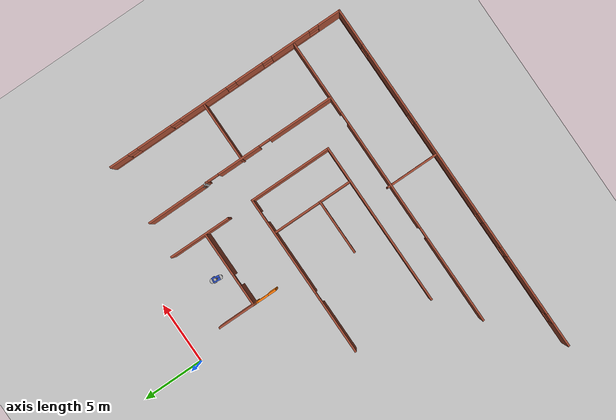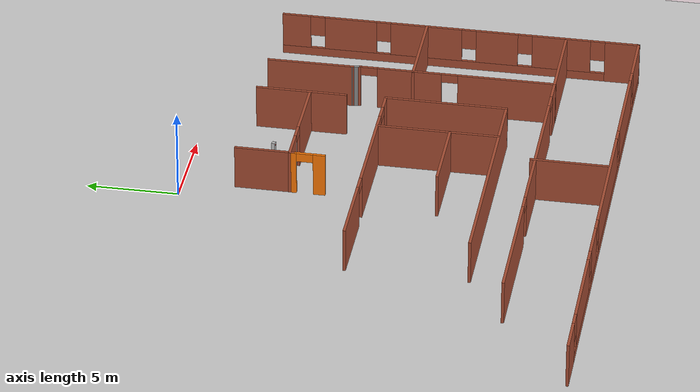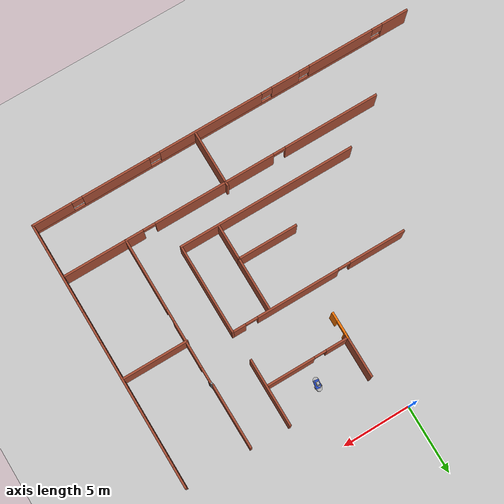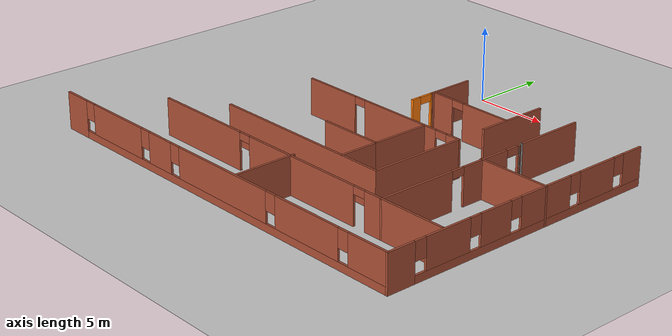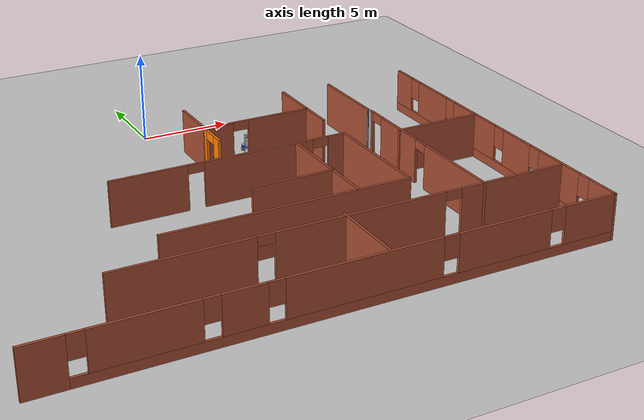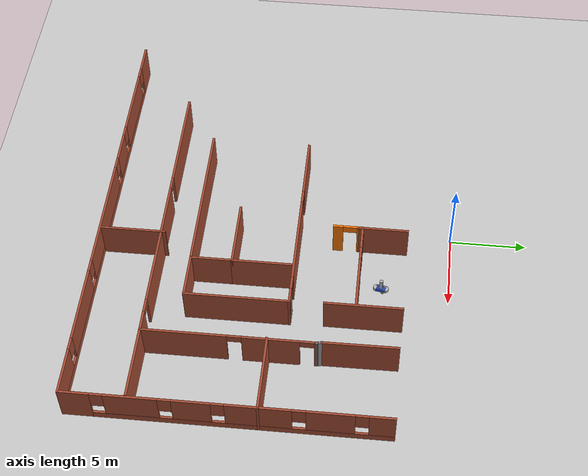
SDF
<sdf version="1.7">
 <world name="default">
  <model name="ground_plane">
   <static>1</static>
   <link name="link">
    <collision name="collision">
     <geometry><plane><normal>0 0 1</normal><size>100 100</size></plane></geometry>
     <surface>
      <contact><collide_bitmask>65535</collide_bitmask></contact>
      <friction><ode><mu>100</mu><mu2>50</mu2></ode></friction>
     </surface>
    </collision>
    <visual name="visual">
     <cast_shadows>0</cast_shadows>
     <geometry><plane><normal>0 0 1</normal><size>100 100</size></plane></geometry>
     <material>
      <script><uri>file://media/materials/scripts/gazebo.material</uri><name>Gazebo/Grey</name></script>
     </material>
    </visual>
   </link>
  </model>
  <model name="dh-hdh">
   <pose>0.666955 -11.441 0 0 -0 0</pose>
   <link name="Wall_27">
    <pose>0.025415 -11.366 0 0 -0 0</pose>
    <visual name="Wall_27_Visual_0">
     <pose>-13.6119 0 1.25 0 -0 0</pose>
     <geometry><box><size>2.02613 0.15 2.5</size></box></geometry>
     <material>
      <script><uri>file://media/materials/scripts/gazebo.material</uri><name>Gazebo/Bricks</name></script>
      <ambient>0.466667 0.462745 0.482353 1</ambient>
     </material>
     <meta><layer>0</layer></meta>
    </visual>
    <collision name="Wall_27_Collision_0">
     <geometry><box><size>2.02613 0.15 2.5</size></box></geometry>
     <pose>-13.6119 0 1.25 0 -0 0</pose>
    </collision>
    <visual name="Wall_27_Visual_1">
     <pose>1.01306 0 0.25 0 -0 0</pose>
     <geometry><box><size>27.2239 0.15 0.5</size></box></geometry>
     <material>
      <script><uri>file://media/materials/scripts/gazebo.material</uri><name>Gazebo/Bricks</name></script>
      <ambient>0.466667 0.462745 0.482353 1</ambient>
     </material>
     <meta><layer>0</layer></meta>
    </visual>
    <collision name="Wall_27_Collision_1">
     <geometry><box><size>27.2239 0.15 0.5</size></box></geometry>
     <pose>1.01306 0 0.25 0 -0 0</pose>
    </collision>
    <visual name="Wall_27_Visual_2">
     <pose>-9.30313 0 1.5 0 -0 0</pose>
     <geometry><box><size>4.99147 0.15 2</size></box></geometry>
     <material>
      <script><uri>file://media/materials/scripts/gazebo.material</uri><name>Gazebo/Bricks</name></script>
      <ambient>0.466667 0.462745 0.482353 1</ambient>
     </material>
     <meta><layer>0</layer></meta>
    </visual>
    <collision name="Wall_27_Collision_2">
     <geometry><box><size>4.99147 0.15 2</size></box></geometry>
     <pose>-9.30313 0 1.5 0 -0 0</pose>
    </collision>
    <visual name="Wall_27_Visual_3">
     <pose>-4.93579 0 1.5 0 -0 0</pose>
     <geometry><box><size>2.14321 0.15 2</size></box></geometry>
     <material>
      <script><uri>file://media/materials/scripts/gazebo.material</uri><name>Gazebo/Bricks</name></script>
      <ambient>0.466667 0.462745 0.482353 1</ambient>
     </material>
     <meta><layer>0</layer></meta>
    </visual>
    <collision name="Wall_27_Collision_3">
     <geometry><box><size>2.14321 0.15 2</size></box></geometry>
     <pose>-4.93579 0 1.5 0 -0 0</pose>
    </collision>
    <visual name="Wall_27_Visual_4">
     <pose>0.896215 0 1.5 0 -0 0</pose>
     <geometry><box><size>7.92081 0.15 2</size></box></geometry>
     <material>
      <script><uri>file://media/materials/scripts/gazebo.material</uri><name>Gazebo/Bricks</name></script>
      <ambient>0.466667 0.462745 0.482353 1</ambient>
     </material>
     <meta><layer>0</layer></meta>
    </visual>
    <collision name="Wall_27_Collision_4">
     <geometry><box><size>7.92081 0.15 2</size></box></geometry>
     <pose>0.896215 0 1.5 0 -0 0</pose>
    </collision>
    <visual name="Wall_27_Visual_5">
     <pose>8.22872 0 1.5 0 -0 0</pose>
     <geometry><box><size>5.14421 0.15 2</size></box></geometry>
     <material>
      <script><uri>file://media/materials/scripts/gazebo.material</uri><name>Gazebo/Bricks</name></script>
      <ambient>0.466667 0.462745 0.482353 1</ambient>
     </material>
     <meta><layer>0</layer></meta>
    </visual>
    <collision name="Wall_27_Collision_5">
     <geometry><box><size>5.14421 0.15 2</size></box></geometry>
     <pose>8.22872 0 1.5 0 -0 0</pose>
    </collision>
    <visual name="Wall_27_Visual_6">
     <pose>13.1129 0 1.5 0 -0 0</pose>
     <geometry><box><size>3.02417 0.15 2</size></box></geometry>
     <material>
      <script><uri>file://media/materials/scripts/gazebo.material</uri><name>Gazebo/Bricks</name></script>
      <ambient>0.466667 0.462745 0.482353 1</ambient>
     </material>
     <meta><layer>0</layer></meta>
    </visual>
    <collision name="Wall_27_Collision_6">
     <geometry><box><size>3.02417 0.15 2</size></box></geometry>
     <pose>13.1129 0 1.5 0 -0 0</pose>
    </collision>
    <visual name="Wall_27_Visual_7">
     <pose>-12.1989 0 1.9 0 -0 0</pose>
     <geometry><box><size>0.8 0.15 1.2</size></box></geometry>
     <material>
      <script><uri>file://media/materials/scripts/gazebo.material</uri><name>Gazebo/Bricks</name></script>
      <ambient>0.466667 0.462745 0.482353 1</ambient>
     </material>
     <meta><layer>0</layer></meta>
    </visual>
    <collision name="Wall_27_Collision_7">
     <geometry><box><size>0.8 0.15 1.2</size></box></geometry>
     <pose>-12.1989 0 1.9 0 -0 0</pose>
    </collision>
    <visual name="Wall_27_Visual_8">
     <pose>-6.4074 0 1.9 0 -0 0</pose>
     <geometry><box><size>0.8 0.15 1.2</size></box></geometry>
     <material>
      <script><uri>file://media/materials/scripts/gazebo.material</uri><name>Gazebo/Bricks</name></script>
      <ambient>0.466667 0.462745 0.482353 1</ambient>
     </material>
     <meta><layer>0</layer></meta>
    </visual>
    <collision name="Wall_27_Collision_8">
     <geometry><box><size>0.8 0.15 1.2</size></box></geometry>
     <pose>-6.4074 0 1.9 0 -0 0</pose>
    </collision>
    <visual name="Wall_27_Visual_9">
     <pose>-3.46419 0 1.9 0 -0 0</pose>
     <geometry><box><size>0.8 0.15 1.2</size></box></geometry>
     <material>
      <script><uri>file://media/materials/scripts/gazebo.material</uri><name>Gazebo/Bricks</name></script>
      <ambient>0.466667 0.462745 0.482353 1</ambient>
     </material>
     <meta><layer>0</layer></meta>
    </visual>
    <collision name="Wall_27_Collision_9">
     <geometry><box><size>0.8 0.15 1.2</size></box></geometry>
     <pose>-3.46419 0 1.9 0 -0 0</pose>
    </collision>
    <visual name="Wall_27_Visual_10">
     <pose>5.25662 0 1.9 0 -0 0</pose>
     <geometry><box><size>0.8 0.15 1.2</size></box></geometry>
     <material>
      <script><uri>file://media/materials/scripts/gazebo.material</uri><name>Gazebo/Bricks</name></script>
      <ambient>0.466667 0.462745 0.482353 1</ambient>
     </material>
     <meta><layer>0</layer></meta>
    </visual>
    <collision name="Wall_27_Collision_10">
     <geometry><box><size>0.8 0.15 1.2</size></box></geometry>
     <pose>5.25662 0 1.9 0 -0 0</pose>
    </collision>
    <visual name="Wall_27_Visual_11">
     <pose>11.2008 0 1.9 0 -0 0</pose>
     <geometry><box><size>0.8 0.15 1.2</size></box></geometry>
     <material>
      <script><uri>file://media/materials/scripts/gazebo.material</uri><name>Gazebo/Bricks</name></script>
      <ambient>0.466667 0.462745 0.482353 1</ambient>
     </material>
     <meta><layer>0</layer></meta>
    </visual>
    <collision name="Wall_27_Collision_11">
     <geometry><box><size>0.8 0.15 1.2</size></box></geometry>
     <pose>11.2008 0 1.9 0 -0 0</pose>
    </collision>
   </link>
   <link name="Wall_28">
    <pose>14.5754 -1.44103 0 0 -0 1.5708</pose>
    <visual name="Wall_28_Visual_0">
     <pose>-9.03458 0 1.25 0 -0 0</pose>
     <geometry><box><size>1.93084 0.15 2.5</size></box></geometry>
     <material>
      <script><uri>file://media/materials/scripts/gazebo.material</uri><name>Gazebo/Bricks</name></script>
      <ambient>0.466667 0.462745 0.482353 1</ambient>
     </material>
     <meta><layer>0</layer></meta>
    </visual>
    <collision name="Wall_28_Collision_0">
     <geometry><box><size>1.93084 0.15 2.5</size></box></geometry>
     <pose>-9.03458 0 1.25 0 -0 0</pose>
    </collision>
    <visual name="Wall_28_Visual_1">
     <pose>0.965422 0 0.25 0 -0 0</pose>
     <geometry><box><size>18.0692 0.15 0.5</size></box></geometry>
     <material>
      <script><uri>file://media/materials/scripts/gazebo.material</uri><name>Gazebo/Bricks</name></script>
      <ambient>0.466667 0.462745 0.482353 1</ambient>
     </material>
     <meta><layer>0</layer></meta>
    </visual>
    <collision name="Wall_28_Collision_1">
     <geometry><box><size>18.0692 0.15 0.5</size></box></geometry>
     <pose>0.965422 0 0.25 0 -0 0</pose>
    </collision>
    <visual name="Wall_28_Visual_2">
     <pose>-5.64647 0 1.5 0 -0 0</pose>
     <geometry><box><size>3.24536 0.15 2</size></box></geometry>
     <material>
      <script><uri>file://media/materials/scripts/gazebo.material</uri><name>Gazebo/Bricks</name></script>
      <ambient>0.466667 0.462745 0.482353 1</ambient>
     </material>
     <meta><layer>0</layer></meta>
    </visual>
    <collision name="Wall_28_Collision_2">
     <geometry><box><size>3.24536 0.15 2</size></box></geometry>
     <pose>-5.64647 0 1.5 0 -0 0</pose>
    </collision>
    <visual name="Wall_28_Visual_3">
     <pose>-2.05518 0 1.5 0 -0 0</pose>
     <geometry><box><size>2.33722 0.15 2</size></box></geometry>
     <material>
      <script><uri>file://media/materials/scripts/gazebo.material</uri><name>Gazebo/Bricks</name></script>
      <ambient>0.466667 0.462745 0.482353 1</ambient>
     </material>
     <meta><layer>0</layer></meta>
    </visual>
    <collision name="Wall_28_Collision_3">
     <geometry><box><size>2.33722 0.15 2</size></box></geometry>
     <pose>-2.05518 0 1.5 0 -0 0</pose>
    </collision>
    <visual name="Wall_28_Visual_4">
     <pose>1.90762 0 1.5 0 -0 0</pose>
     <geometry><box><size>3.98839 0.15 2</size></box></geometry>
     <material>
      <script><uri>file://media/materials/scripts/gazebo.material</uri><name>Gazebo/Bricks</name></script>
      <ambient>0.466667 0.462745 0.482353 1</ambient>
     </material>
     <meta><layer>0</layer></meta>
    </visual>
    <collision name="Wall_28_Collision_4">
     <geometry><box><size>3.98839 0.15 2</size></box></geometry>
     <pose>1.90762 0 1.5 0 -0 0</pose>
    </collision>
    <visual name="Wall_28_Visual_5">
     <pose>6.15938 0 1.5 0 -0 0</pose>
     <geometry><box><size>2.91513 0.15 2</size></box></geometry>
     <material>
      <script><uri>file://media/materials/scripts/gazebo.material</uri><name>Gazebo/Bricks</name></script>
      <ambient>0.466667 0.462745 0.482353 1</ambient>
     </material>
     <meta><layer>0</layer></meta>
    </visual>
    <collision name="Wall_28_Collision_5">
     <geometry><box><size>2.91513 0.15 2</size></box></geometry>
     <pose>6.15938 0 1.5 0 -0 0</pose>
    </collision>
    <visual name="Wall_28_Visual_6">
     <pose>9.20847 0 1.5 0 -0 0</pose>
     <geometry><box><size>1.58306 0.15 2</size></box></geometry>
     <material>
      <script><uri>file://media/materials/scripts/gazebo.material</uri><name>Gazebo/Bricks</name></script>
      <ambient>0.466667 0.462745 0.482353 1</ambient>
     </material>
     <meta><layer>0</layer></meta>
    </visual>
    <collision name="Wall_28_Collision_6">
     <geometry><box><size>1.58306 0.15 2</size></box></geometry>
     <pose>9.20847 0 1.5 0 -0 0</pose>
    </collision>
    <visual name="Wall_28_Visual_7">
     <pose>-7.66916 0 1.9 0 -0 0</pose>
     <geometry><box><size>0.8 0.15 1.2</size></box></geometry>
     <material>
      <script><uri>file://media/materials/scripts/gazebo.material</uri><name>Gazebo/Bricks</name></script>
      <ambient>0.466667 0.462745 0.482353 1</ambient>
     </material>
     <meta><layer>0</layer></meta>
    </visual>
    <collision name="Wall_28_Collision_7">
     <geometry><box><size>0.8 0.15 1.2</size></box></geometry>
     <pose>-7.66916 0 1.9 0 -0 0</pose>
    </collision>
    <visual name="Wall_28_Visual_8">
     <pose>-3.62379 0 1.9 0 -0 0</pose>
     <geometry><box><size>0.8 0.15 1.2</size></box></geometry>
     <material>
      <script><uri>file://media/materials/scripts/gazebo.material</uri><name>Gazebo/Bricks</name></script>
      <ambient>0.466667 0.462745 0.482353 1</ambient>
     </material>
     <meta><layer>0</layer></meta>
    </visual>
    <collision name="Wall_28_Collision_8">
     <geometry><box><size>0.8 0.15 1.2</size></box></geometry>
     <pose>-3.62379 0 1.9 0 -0 0</pose>
    </collision>
    <visual name="Wall_28_Visual_9">
     <pose>-0.486573 0 1.9 0 -0 0</pose>
     <geometry><box><size>0.8 0.15 1.2</size></box></geometry>
     <material>
      <script><uri>file://media/materials/scripts/gazebo.material</uri><name>Gazebo/Bricks</name></script>
      <ambient>0.466667 0.462745 0.482353 1</ambient>
     </material>
     <meta><layer>0</layer></meta>
    </visual>
    <collision name="Wall_28_Collision_9">
     <geometry><box><size>0.8 0.15 1.2</size></box></geometry>
     <pose>-0.486573 0 1.9 0 -0 0</pose>
    </collision>
    <visual name="Wall_28_Visual_10">
     <pose>4.30182 0 1.9 0 -0 0</pose>
     <geometry><box><size>0.8 0.15 1.2</size></box></geometry>
     <material>
      <script><uri>file://media/materials/scripts/gazebo.material</uri><name>Gazebo/Bricks</name></script>
      <ambient>0.466667 0.462745 0.482353 1</ambient>
     </material>
     <meta><layer>0</layer></meta>
    </visual>
    <collision name="Wall_28_Collision_10">
     <geometry><box><size>0.8 0.15 1.2</size></box></geometry>
     <pose>4.30182 0 1.9 0 -0 0</pose>
    </collision>
    <visual name="Wall_28_Visual_11">
     <pose>8.01694 0 1.9 0 -0 0</pose>
     <geometry><box><size>0.8 0.15 1.2</size></box></geometry>
     <material>
      <script><uri>file://media/materials/scripts/gazebo.material</uri><name>Gazebo/Bricks</name></script>
      <ambient>0.466667 0.462745 0.482353 1</ambient>
     </material>
     <meta><layer>0</layer></meta>
    </visual>
    <collision name="Wall_28_Collision_11">
     <geometry><box><size>0.8 0.15 1.2</size></box></geometry>
     <pose>8.01694 0 1.9 0 -0 0</pose>
    </collision>
   </link>
   <link name="Wall_32">
    <pose>0.116267 -7.34918 0 0 -0 0</pose>
    <visual name="Wall_32_Visual_0">
     <pose>-6.16143 0 1.25 0 -0 0</pose>
     <geometry><box><size>7.17714 0.15 2.5</size></box></geometry>
     <material>
      <script><uri>file://media/materials/scripts/gazebo.material</uri><name>Gazebo/Bricks</name></script>
      <ambient>0.996078 0.47451 0.0196078 1</ambient>
     </material>
     <meta><layer>0</layer></meta>
    </visual>
    <collision name="Wall_32_Collision_0">
     <geometry><box><size>7.17714 0.15 2.5</size></box></geometry>
     <pose>-6.16143 0 1.25 0 -0 0</pose>
    </collision>
    <visual name="Wall_32_Visual_1">
     <pose>2.89166 0 1.25 0 -0 0</pose>
     <geometry><box><size>9.12904 0.15 2.5</size></box></geometry>
     <material>
      <script><uri>file://media/materials/scripts/gazebo.material</uri><name>Gazebo/Bricks</name></script>
      <ambient>0.996078 0.47451 0.0196078 1</ambient>
     </material>
     <meta><layer>0</layer></meta>
    </visual>
    <collision name="Wall_32_Collision_1">
     <geometry><box><size>9.12904 0.15 2.5</size></box></geometry>
     <pose>2.89166 0 1.25 0 -0 0</pose>
    </collision>
    <visual name="Wall_32_Visual_2">
     <pose>9.05309 0 1.25 0 -0 0</pose>
     <geometry><box><size>1.39382 0.15 2.5</size></box></geometry>
     <material>
      <script><uri>file://media/materials/scripts/gazebo.material</uri><name>Gazebo/Bricks</name></script>
      <ambient>0.996078 0.47451 0.0196078 1</ambient>
     </material>
     <meta><layer>0</layer></meta>
    </visual>
    <collision name="Wall_32_Collision_2">
     <geometry><box><size>1.39382 0.15 2.5</size></box></geometry>
     <pose>9.05309 0 1.25 0 -0 0</pose>
    </collision>
    <visual name="Wall_32_Visual_3">
     <pose>-2.12286 0 2.25 0 -0 0</pose>
     <geometry><box><size>0.9 0.15 0.5</size></box></geometry>
     <material>
      <script><uri>file://media/materials/scripts/gazebo.material</uri><name>Gazebo/Bricks</name></script>
      <ambient>0.996078 0.47451 0.0196078 1</ambient>
     </material>
     <meta><layer>0</layer></meta>
    </visual>
    <collision name="Wall_32_Collision_3">
     <geometry><box><size>0.9 0.15 0.5</size></box></geometry>
     <pose>-2.12286 0 2.25 0 -0 0</pose>
    </collision>
    <visual name="Wall_32_Visual_4">
     <pose>7.90618 0 2.25 0 -0 0</pose>
     <geometry><box><size>0.9 0.15 0.5</size></box></geometry>
     <material>
      <script><uri>file://media/materials/scripts/gazebo.material</uri><name>Gazebo/Bricks</name></script>
      <ambient>0.996078 0.47451 0.0196078 1</ambient>
     </material>
     <meta><layer>0</layer></meta>
    </visual>
    <collision name="Wall_32_Collision_4">
     <geometry><box><size>0.9 0.15 0.5</size></box></geometry>
     <pose>7.90618 0 2.25 0 -0 0</pose>
    </collision>
   </link>
   <link name="Wall_33">
    <pose>9.79127 -1.92418 0 0 -0 1.5708</pose>
    <visual name="Wall_33_Visual_0">
     <pose>-2.80029 0 1.25 0 -0 0</pose>
     <geometry><box><size>5.39943 0.15 2.5</size></box></geometry>
     <material>
      <script><uri>file://media/materials/scripts/gazebo.material</uri><name>Gazebo/Bricks</name></script>
      <ambient>0.996078 0.47451 0.0196078 1</ambient>
     </material>
     <meta><layer>0</layer></meta>
    </visual>
    <collision name="Wall_33_Collision_0">
     <geometry><box><size>5.39943 0.15 2.5</size></box></geometry>
     <pose>-2.80029 0 1.25 0 -0 0</pose>
    </collision>
    <visual name="Wall_33_Visual_1">
     <pose>2.57855 0 1.25 0 -0 0</pose>
     <geometry><box><size>3.55825 0.15 2.5</size></box></geometry>
     <material>
      <script><uri>file://media/materials/scripts/gazebo.material</uri><name>Gazebo/Bricks</name></script>
      <ambient>0.996078 0.47451 0.0196078 1</ambient>
     </material>
     <meta><layer>0</layer></meta>
    </visual>
    <collision name="Wall_33_Collision_1">
     <geometry><box><size>3.55825 0.15 2.5</size></box></geometry>
     <pose>2.57855 0 1.25 0 -0 0</pose>
    </collision>
    <visual name="Wall_33_Visual_2">
     <pose>5.37884 0 1.25 0 -0 0</pose>
     <geometry><box><size>0.24232 0.15 2.5</size></box></geometry>
     <material>
      <script><uri>file://media/materials/scripts/gazebo.material</uri><name>Gazebo/Bricks</name></script>
      <ambient>0.996078 0.47451 0.0196078 1</ambient>
     </material>
     <meta><layer>0</layer></meta>
    </visual>
    <collision name="Wall_33_Collision_2">
     <geometry><box><size>0.24232 0.15 2.5</size></box></geometry>
     <pose>5.37884 0 1.25 0 -0 0</pose>
    </collision>
    <visual name="Wall_33_Visual_3">
     <pose>0.349428 0 2.25 0 -0 0</pose>
     <geometry><box><size>0.9 0.15 0.5</size></box></geometry>
     <material>
      <script><uri>file://media/materials/scripts/gazebo.material</uri><name>Gazebo/Bricks</name></script>
      <ambient>0.996078 0.47451 0.0196078 1</ambient>
     </material>
     <meta><layer>0</layer></meta>
    </visual>
    <collision name="Wall_33_Collision_3">
     <geometry><box><size>0.9 0.15 0.5</size></box></geometry>
     <pose>0.349428 0 2.25 0 -0 0</pose>
    </collision>
    <visual name="Wall_33_Visual_4">
     <pose>4.80768 0 2.25 0 -0 0</pose>
     <geometry><box><size>0.9 0.15 0.5</size></box></geometry>
     <material>
      <script><uri>file://media/materials/scripts/gazebo.material</uri><name>Gazebo/Bricks</name></script>
      <ambient>0.996078 0.47451 0.0196078 1</ambient>
     </material>
     <meta><layer>0</layer></meta>
    </visual>
    <collision name="Wall_33_Collision_4">
     <geometry><box><size>0.9 0.15 0.5</size></box></geometry>
     <pose>4.80768 0 2.25 0 -0 0</pose>
    </collision>
   </link>
   <link name="Wall_34">
    <collision name="Wall_34_Collision">
     <geometry><box><size>0.437183 0.15 2.5</size></box></geometry>
     <pose>0 0 1.25 0 -0 0</pose>
    </collision>
    <visual name="Wall_34_Visual">
     <pose>0 0 1.25 0 -0 0</pose>
     <geometry><box><size>0.437183 0.15 2.5</size></box></geometry>
     <material>
      <script><uri>file://media/materials/scripts/gazebo.material</uri><name>Gazebo/Grey</name></script>
      <ambient>1 1 1 1</ambient>
     </material>
     <meta><layer>0</layer></meta>
    </visual>
    <pose>9.76068 3.64111 0 0 -0 1.78548</pose>
   </link>
   <link name="Wall_40">
    <collision name="Wall_40_Collision">
     <geometry><box><size>4.80758 0.15 2.5</size></box></geometry>
     <pose>0 0 1.25 0 -0 0</pose>
    </collision>
    <visual name="Wall_40_Visual">
     <pose>0 0 1.25 0 -0 0</pose>
     <geometry><box><size>4.80758 0.15 2.5</size></box></geometry>
     <material>
      <script><uri>file://media/materials/scripts/gazebo.material</uri><name>Gazebo/Bricks</name></script>
      <ambient>0.996078 0.47451 0.0196078 1</ambient>
     </material>
     <meta><layer>0</layer></meta>
    </visual>
    <pose>9.71538 6.11015 0 0 -0 1.57711</pose>
   </link>
   <link name="Wall_42">
    <collision name="Wall_42_Collision">
     <geometry><box><size>5 0.15 2.5</size></box></geometry>
     <pose>0 0 1.25 0 -0 0</pose>
    </collision>
    <visual name="Wall_42_Visual">
     <pose>0 0 1.25 0 -0 0</pose>
     <geometry><box><size>5 0.15 2.5</size></box></geometry>
     <material>
      <script><uri>file://media/materials/scripts/gazebo.material</uri><name>Gazebo/Bricks</name></script>
      <ambient>0.996078 0.47451 0.0196078 1</ambient>
     </material>
     <meta><layer>0</layer></meta>
    </visual>
    <pose>6.79742 6.09993 0 0 -0 -1.5708</pose>
   </link>
   <link name="Wall_46">
    <collision name="Wall_46_Collision">
     <geometry><box><size>13.25 0.15 2.5</size></box></geometry>
     <pose>0 0 1.25 0 -0 0</pose>
    </collision>
    <visual name="Wall_46_Visual">
     <pose>0 0 1.25 0 -0 0</pose>
     <geometry><box><size>13.25 0.15 2.5</size></box></geometry>
     <material>
      <script><uri>file://media/materials/scripts/gazebo.material</uri><name>Gazebo/Bricks</name></script>
      <ambient>0.996078 0.47451 0.0196078 1</ambient>
     </material>
     <meta><layer>0</layer></meta>
    </visual>
    <pose>0.332017 -5.11879 0 0 -0 0</pose>
   </link>
   <link name="Wall_47">
    <collision name="Wall_47_Collision">
     <geometry><box><size>6.75 0.15 2.5</size></box></geometry>
     <pose>0 0 1.25 0 -0 0</pose>
    </collision>
    <visual name="Wall_47_Visual">
     <pose>0 0 1.25 0 -0 0</pose>
     <geometry><box><size>6.75 0.15 2.5</size></box></geometry>
     <material>
      <script><uri>file://media/materials/scripts/gazebo.material</uri><name>Gazebo/Bricks</name></script>
      <ambient>0.996078 0.47451 0.0196078 1</ambient>
     </material>
     <meta><layer>0</layer></meta>
    </visual>
    <pose>6.88202 -1.81879 0 0 -0 1.5708</pose>
   </link>
   <link name="Wall_48">
    <pose>0.332017 1.48121 0 0 -0 3.14159</pose>
    <visual name="Wall_48_Visual_0">
     <pose>-6.09095 0 1.25 0 -0 0</pose>
     <geometry><box><size>1.0681 0.15 2.5</size></box></geometry>
     <material>
      <script><uri>file://media/materials/scripts/gazebo.material</uri><name>Gazebo/Bricks</name></script>
      <ambient>0.996078 0.47451 0.0196078 1</ambient>
     </material>
     <meta><layer>0</layer></meta>
    </visual>
    <collision name="Wall_48_Collision_0">
     <geometry><box><size>1.0681 0.15 2.5</size></box></geometry>
     <pose>-6.09095 0 1.25 0 -0 0</pose>
    </collision>
    <visual name="Wall_48_Visual_1">
     <pose>-1.5667 0 1.25 0 -0 0</pose>
     <geometry><box><size>6.1804 0.15 2.5</size></box></geometry>
     <material>
      <script><uri>file://media/materials/scripts/gazebo.material</uri><name>Gazebo/Bricks</name></script>
      <ambient>0.996078 0.47451 0.0196078 1</ambient>
     </material>
     <meta><layer>0</layer></meta>
    </visual>
    <collision name="Wall_48_Collision_1">
     <geometry><box><size>6.1804 0.15 2.5</size></box></geometry>
     <pose>-1.5667 0 1.25 0 -0 0</pose>
    </collision>
    <visual name="Wall_48_Visual_2">
     <pose>4.52425 0 1.25 0 -0 0</pose>
     <geometry><box><size>4.2015 0.15 2.5</size></box></geometry>
     <material>
      <script><uri>file://media/materials/scripts/gazebo.material</uri><name>Gazebo/Bricks</name></script>
      <ambient>0.996078 0.47451 0.0196078 1</ambient>
     </material>
     <meta><layer>0</layer></meta>
    </visual>
    <collision name="Wall_48_Collision_2">
     <geometry><box><size>4.2015 0.15 2.5</size></box></geometry>
     <pose>4.52425 0 1.25 0 -0 0</pose>
    </collision>
    <visual name="Wall_48_Visual_3">
     <pose>-5.1069 0 2.25 0 -0 0</pose>
     <geometry><box><size>0.9 0.15 0.5</size></box></geometry>
     <material>
      <script><uri>file://media/materials/scripts/gazebo.material</uri><name>Gazebo/Bricks</name></script>
      <ambient>0.996078 0.47451 0.0196078 1</ambient>
     </material>
     <meta><layer>0</layer></meta>
    </visual>
    <collision name="Wall_48_Collision_3">
     <geometry><box><size>0.9 0.15 0.5</size></box></geometry>
     <pose>-5.1069 0 2.25 0 -0 0</pose>
    </collision>
    <visual name="Wall_48_Visual_4">
     <pose>1.9735 0 2.25 0 -0 0</pose>
     <geometry><box><size>0.9 0.15 0.5</size></box></geometry>
     <material>
      <script><uri>file://media/materials/scripts/gazebo.material</uri><name>Gazebo/Bricks</name></script>
      <ambient>0.996078 0.47451 0.0196078 1</ambient>
     </material>
     <meta><layer>0</layer></meta>
    </visual>
    <collision name="Wall_48_Collision_4">
     <geometry><box><size>0.9 0.15 0.5</size></box></geometry>
     <pose>1.9735 0 2.25 0 -0 0</pose>
    </collision>
   </link>
   <link name="Wall_52">
    <collision name="Wall_52_Collision">
     <geometry><box><size>5 0.15 2.5</size></box></geometry>
     <pose>0 0 1.25 0 -0 0</pose>
    </collision>
    <visual name="Wall_52_Visual">
     <pose>0 0 1.25 0 -0 0</pose>
     <geometry><box><size>5 0.15 2.5</size></box></geometry>
     <material>
      <script><uri>file://media/materials/scripts/gazebo.material</uri><name>Gazebo/Bricks</name></script>
      <ambient>1 1 1 1</ambient>
     </material>
     <meta><layer>0</layer></meta>
    </visual>
    <pose>12.151 0.44258 0 0 -0 3.14159</pose>
   </link>
   <link name="Wall_54">
    <pose>0.639104 4.70317 0 0 -0 1.5708</pose>
    <visual name="Wall_54_Visual_0">
     <pose>-0.671951 0 1.25 0 -0 0</pose>
     <geometry><box><size>0.656098 0.15 2.5</size></box></geometry>
     <material>
      <script><uri>file://media/materials/scripts/gazebo.material</uri><name>Gazebo/Grey</name></script>
      <ambient>0.996078 0.47451 0.0196078 1</ambient>
     </material>
     <meta><layer>0</layer></meta>
    </visual>
    <collision name="Wall_54_Collision_0">
     <geometry><box><size>0.656098 0.15 2.5</size></box></geometry>
     <pose>-0.671951 0 1.25 0 -0 0</pose>
    </collision>
    <visual name="Wall_54_Visual_1">
     <pose>0.778049 0 1.25 0 -0 0</pose>
     <geometry><box><size>0.443902 0.15 2.5</size></box></geometry>
     <material>
      <script><uri>file://media/materials/scripts/gazebo.material</uri><name>Gazebo/Grey</name></script>
      <ambient>0.996078 0.47451 0.0196078 1</ambient>
     </material>
     <meta><layer>0</layer></meta>
    </visual>
    <collision name="Wall_54_Collision_1">
     <geometry><box><size>0.443902 0.15 2.5</size></box></geometry>
     <pose>0.778049 0 1.25 0 -0 0</pose>
    </collision>
    <visual name="Wall_54_Visual_2">
     <pose>0.106098 0 2.25 0 -0 0</pose>
     <geometry><box><size>0.9 0.15 0.5</size></box></geometry>
     <material>
      <script><uri>file://media/materials/scripts/gazebo.material</uri><name>Gazebo/Grey</name></script>
      <ambient>0.996078 0.47451 0.0196078 1</ambient>
     </material>
     <meta><layer>0</layer></meta>
    </visual>
    <collision name="Wall_54_Collision_2">
     <geometry><box><size>0.9 0.15 0.5</size></box></geometry>
     <pose>0.106098 0 2.25 0 -0 0</pose>
    </collision>
   </link>
   <link name="Wall_55">
    <pose>3.6891 5.62817 0 0 -0 0</pose>
    <visual name="Wall_55_Visual_0">
     <pose>-2.26348 0 1.25 0 -0 0</pose>
     <geometry><box><size>1.72304 0.15 2.5</size></box></geometry>
     <material>
      <script><uri>file://media/materials/scripts/gazebo.material</uri><name>Gazebo/Bricks</name></script>
      <ambient>0.996078 0.47451 0.0196078 1</ambient>
     </material>
     <meta><layer>0</layer></meta>
    </visual>
    <collision name="Wall_55_Collision_0">
     <geometry><box><size>1.72304 0.15 2.5</size></box></geometry>
     <pose>-2.26348 0 1.25 0 -0 0</pose>
    </collision>
    <visual name="Wall_55_Visual_1">
     <pose>1.31152 0 1.25 0 -0 0</pose>
     <geometry><box><size>3.62696 0.15 2.5</size></box></geometry>
     <material>
      <script><uri>file://media/materials/scripts/gazebo.material</uri><name>Gazebo/Bricks</name></script>
      <ambient>0.996078 0.47451 0.0196078 1</ambient>
     </material>
     <meta><layer>0</layer></meta>
    </visual>
    <collision name="Wall_55_Collision_1">
     <geometry><box><size>3.62696 0.15 2.5</size></box></geometry>
     <pose>1.31152 0 1.25 0 -0 0</pose>
    </collision>
    <visual name="Wall_55_Visual_2">
     <pose>-0.951961 0 2.25 0 -0 0</pose>
     <geometry><box><size>0.9 0.15 0.5</size></box></geometry>
     <material>
      <script><uri>file://media/materials/scripts/gazebo.material</uri><name>Gazebo/Bricks</name></script>
      <ambient>0.996078 0.47451 0.0196078 1</ambient>
     </material>
     <meta><layer>0</layer></meta>
    </visual>
    <collision name="Wall_55_Collision_2">
     <geometry><box><size>0.9 0.15 0.5</size></box></geometry>
     <pose>-0.951961 0 2.25 0 -0 0</pose>
    </collision>
   </link>
   <link name="Wall_57">
    <collision name="Wall_57_Collision">
     <geometry><box><size>3.25 0.15 2.5</size></box></geometry>
     <pose>0 0 1.25 0 -0 0</pose>
    </collision>
    <visual name="Wall_57_Visual">
     <pose>0 0 1.25 0 -0 0</pose>
     <geometry><box><size>3.25 0.15 2.5</size></box></geometry>
     <material>
      <script><uri>file://media/materials/scripts/gazebo.material</uri><name>Gazebo/Bricks</name></script>
      <ambient>0.996078 0.47451 0.0196078 1</ambient>
     </material>
     <meta><layer>0</layer></meta>
    </visual>
    <pose>0.649049 6.99104 0 0 -0 1.5708</pose>
   </link>
   <link name="Wall_68">
    <collision name="Wall_68_Collision">
     <geometry><box><size>4.25 0.15 2.5</size></box></geometry>
     <pose>0 0 1.25 0 -0 0</pose>
    </collision>
    <visual name="Wall_68_Visual">
     <pose>0 0 1.25 0 -0 0</pose>
     <geometry><box><size>4.25 0.15 2.5</size></box></geometry>
     <material>
      <script><uri>file://media/materials/scripts/gazebo.material</uri><name>Gazebo/Bricks</name></script>
      <ambient>1 1 1 1</ambient>
     </material>
     <meta><layer>0</layer></meta>
    </visual>
    <pose>2.14488 -9.18492 0 0 -0 -1.5708</pose>
   </link>
   <link name="Wall_70">
    <collision name="Wall_70_Collision">
     <geometry><box><size>4.75 0.15 2.5</size></box></geometry>
     <pose>0 0 1.25 0 -0 0</pose>
    </collision>
    <visual name="Wall_70_Visual">
     <pose>0 0 1.25 0 -0 0</pose>
     <geometry><box><size>4.75 0.15 2.5</size></box></geometry>
     <material>
      <script><uri>file://media/materials/scripts/gazebo.material</uri><name>Gazebo/Bricks</name></script>
      <ambient>1 1 1 1</ambient>
     </material>
     <meta><layer>0</layer></meta>
    </visual>
    <pose>12.0913 -7.34918 0 0 -0 0</pose>
   </link>
   <link name="Wall_80">
    <collision name="Wall_80_Collision">
     <geometry><box><size>4.5 0.15 2.5</size></box></geometry>
     <pose>0 0 1.25 0 -0 0</pose>
    </collision>
    <visual name="Wall_80_Visual">
     <pose>0 0 1.25 0 -0 0</pose>
     <geometry><box><size>4.5 0.15 2.5</size></box></geometry>
     <material>
      <script><uri>file://media/materials/scripts/gazebo.material</uri><name>Gazebo/Bricks</name></script>
      <ambient>1 1 1 1</ambient>
     </material>
     <meta><layer>0</layer></meta>
    </visual>
    <pose>1.86442 -2.47385 0 0 -0 0</pose>
   </link>
   <link name="Wall_81">
    <collision name="Wall_81_Collision">
     <geometry><box><size>4 0.15 2.5</size></box></geometry>
     <pose>0 0 1.25 0 -0 0</pose>
    </collision>
    <visual name="Wall_81_Visual">
     <pose>0 0 1.25 0 -0 0</pose>
     <geometry><box><size>4 0.15 2.5</size></box></geometry>
     <material>
      <script><uri>file://media/materials/scripts/gazebo.material</uri><name>Gazebo/Bricks</name></script>
      <ambient>1 1 1 1</ambient>
     </material>
     <meta><layer>0</layer></meta>
    </visual>
    <pose>4.03942 -0.548851 0 0 -0 1.5708</pose>
   </link>
   <link name="Wall_83">
    <collision name="Wall_83_Collision">
     <geometry><box><size>2.75 0.15 2.5</size></box></geometry>
     <pose>0 0 1.25 0 -0 0</pose>
    </collision>
    <visual name="Wall_83_Visual">
     <pose>0 0 1.25 0 -0 0</pose>
     <geometry><box><size>2.75 0.15 2.5</size></box></geometry>
     <material>
      <script><uri>file://media/materials/scripts/gazebo.material</uri><name>Gazebo/Bricks</name></script>
      <ambient>1 1 1 1</ambient>
     </material>
     <meta><layer>0</layer></meta>
    </visual>
    <pose>4.03942 -3.77385 0 0 -0 -1.5708</pose>
   </link>
   <static>1</static>
  </model>
  <model name="simple_robo">
   <link name="base_footprint">
    <inertial>
     <pose>0.005813 0 0.357225 0 -0 0</pose>
     <mass>20.9</mass>
     <inertia>
      <ixx>2.45628</ixx>
      <ixy>0</ixy>
      <ixz>0.0222228</ixz>
      <iyy>2.87997</iyy>
      <iyz>0</iyz>
      <izz>2.39241</izz>
     </inertia>
    </inertial>
    <collision name="base_footprint_fixed_joint_lump__base_link_collision">
     <pose>0 0 0.2 0 -0 0</pose>
     <geometry><box><size>0.6 0.4 0.2</size></box></geometry>
    </collision>
    <collision name="base_footprint_fixed_joint_lump__back_bumper_link_collision_1">
     <pose>-0.3 0 0.2 0 -0 0</pose>
     <geometry><box><size>0.4 0.4 0.2</size></box></geometry>
    </collision>
    <collision name="base_footprint_fixed_joint_lump__lower_back_lidar_link_collision_2">
     <pose>-0.51 0 0.2 0 -0 0</pose>
     <geometry><cylinder><length>0.01</length><radius>0.01</radius></cylinder></geometry>
    </collision>
    <collision name="base_footprint_fixed_joint_lump__caster_wheel_link_collision_3">
     <pose>0.2 0 0.05 0 -0 0</pose>
     <geometry><sphere><radius>0.05</radius></sphere></geometry>
     <surface><friction><ode><mu>0.1</mu><mu2>0.1</mu2></ode></friction></surface>
    </collision>
    <collision name="base_footprint_fixed_joint_lump__front_bumper_link_collision_4">
     <pose>0.3 0 0.2 0 -0 0</pose>
     <geometry><box><size>0.4 0.4 0.2</size></box></geometry>
    </collision>
    <collision name="base_footprint_fixed_joint_lump__lower_lidar_link_collision_5">
     <pose>0.51 0 0.2 0 -0 0</pose>
     <geometry><cylinder><length>0.01</length><radius>0.01</radius></cylinder></geometry>
    </collision>
    <collision name="base_footprint_fixed_joint_lump__tower_link_collision_6">
     <pose>0 0 1 0 -0 0</pose>
     <geometry><box><size>0.2 0.2 0.7</size></box></geometry>
    </collision>
    <collision name="base_footprint_fixed_joint_lump__camera_link_collision_7">
     <pose>0.105 0 0.86 0 -0 0</pose>
     <geometry><box><size>0.01 0.1 0.05</size></box></geometry>
    </collision>
    <collision name="base_footprint_fixed_joint_lump__lidar_link_collision_8">
     <pose>0.11 0 0.65 0 -0 0</pose>
     <geometry><cylinder><length>0.01</length><radius>0.01</radius></cylinder></geometry>
    </collision>
    <visual name="base_footprint_fixed_joint_lump__base_link_visual">
     <pose>0 0 0.2 0 -0 0</pose>
     <geometry><box><size>0.6 0.4 0.2</size></box></geometry>
     <material>
      <script><name>Gazebo/Blue</name><uri>file://media/materials/scripts/gazebo.material</uri></script>
     </material>
    </visual>
    <visual name="base_footprint_fixed_joint_lump__back_bumper_link_visual_1">
     <pose>-0.3 0 0.2 0 -0 0</pose>
     <geometry><cylinder><length>0.2</length><radius>0.2</radius></cylinder></geometry>
    </visual>
    <visual name="base_footprint_fixed_joint_lump__lower_back_lidar_link_visual_2">
     <pose>-0.51 0 0.2 0 -0 0</pose>
     <geometry><cylinder><length>0.01</length><radius>0.01</radius></cylinder></geometry>
    </visual>
    <visual name="base_footprint_fixed_joint_lump__caster_wheel_link_visual_3">
     <pose>0.2 0 0.05 0 -0 0</pose>
     <geometry><sphere><radius>0.05</radius></sphere></geometry>
     <material>
      <script><name>Gazebo/Grey</name><uri>file://media/materials/scripts/gazebo.material</uri></script>
     </material>
    </visual>
    <visual name="base_footprint_fixed_joint_lump__front_bumper_link_visual_4">
     <pose>0.3 0 0.2 0 -0 0</pose>
     <geometry><cylinder><length>0.2</length><radius>0.2</radius></cylinder></geometry>
    </visual>
    <visual name="base_footprint_fixed_joint_lump__lower_lidar_link_visual_5">
     <pose>0.51 0 0.2 0 -0 0</pose>
     <geometry><cylinder><length>0.01</length><radius>0.01</radius></cylinder></geometry>
    </visual>
    <visual name="base_footprint_fixed_joint_lump__tower_link_visual_6">
     <pose>0 0 0.65 0 -0 0</pose>
     <geometry><box><size>0.2 0.2 0.7</size></box></geometry>
    </visual>
    <visual name="base_footprint_fixed_joint_lump__camera_link_visual_7">
     <pose>0.105 0 0.86 0 -0 0</pose>
     <geometry><box><size>0.01 0.1 0.05</size></box></geometry>
     <material>
      <script><name>Gazebo/Red</name><uri>file://media/materials/scripts/gazebo.material</uri></script>
     </material>
    </visual>
    <visual name="base_footprint_fixed_joint_lump__lidar_link_visual_8">
     <pose>0.11 0 0.65 0 -0 0</pose>
     <geometry><cylinder><length>0.01</length><radius>0.01</radius></cylinder></geometry>
    </visual>
    <sensor name="lower_back_lidar" type="ray">
     <always_on>1</always_on>
     <visualize>1</visualize>
     <update_rate>5</update_rate>
     <ray>
      <scan>
       <horizontal>
        <samples>1</samples>
        <resolution>1</resolution>
        <min_angle>0</min_angle>
        <max_angle>0</max_angle>
       </horizontal>
       <vertical><samples>1</samples><min_angle>0</min_angle><max_angle>0</max_angle></vertical>
      </scan>
      <range><min>0.12</min><max>3.5</max><resolution>0.015</resolution></range>
      <noise><type>gaussian</type><mean>0</mean><stddev>0.01</stddev></noise>
     </ray>
     <plugin name="distance_back" filename="libgazebo_ros_ray_sensor.so">
      <topic_name>back_distance</topic_name>
      <output_type>sensor_msgs/Range</output_type>
      <frame_name>lower_back_lidar_link</frame_name>
      <radiation_type>infrared</radiation_type>
     </plugin>
     <pose>-0.51 0 0.2 0 -0 0</pose>
    </sensor>
    <sensor name="lower_lidar" type="ray">
     <always_on>1</always_on>
     <visualize>1</visualize>
     <update_rate>5</update_rate>
     <ray>
      <scan>
       <horizontal>
        <samples>1</samples>
        <resolution>1</resolution>
        <min_angle>0</min_angle>
        <max_angle>0</max_angle>
       </horizontal>
       <vertical><samples>1</samples><min_angle>0</min_angle><max_angle>0</max_angle></vertical>
      </scan>
      <range><min>0.12</min><max>3.5</max><resolution>0.015</resolution></range>
      <noise><type>gaussian</type><mean>0</mean><stddev>0.01</stddev></noise>
     </ray>
     <plugin name="distance_lower" filename="libgazebo_ros_ray_sensor.so">
      <topic_name>lower_distance</topic_name>
      <output_type>sensor_msgs/Range</output_type>
      <frame_name>lower_lidar_link</frame_name>
      <radiation_type>infrared</radiation_type>
     </plugin>
     <pose>0.51 0 0.2 0 -0 0</pose>
    </sensor>
    <sensor name="camera_sensor" type="camera">
     <visualize>1</visualize>
     <update_rate>10</update_rate>
     <plugin name="front_robot" filename="libgazebo_ros_camera.so">
      <frame_name>camera_link_optical</frame_name>
     </plugin>
     <pose>0.105 0 0.86 0 -0 0</pose>
     <camera>
      <horizontal_fov>1.047</horizontal_fov>
      <image><width>320</width><height>240</height></image>
      <clip><near>0.1</near><far>100</far></clip>
     </camera>
    </sensor>
    <sensor name="lidar" type="ray">
     <always_on>1</always_on>
     <visualize>1</visualize>
     <update_rate>5</update_rate>
     <ray>
      <scan>
       <horizontal>
        <samples>1</samples>
        <resolution>1</resolution>
        <min_angle>0</min_angle>
        <max_angle>0</max_angle>
       </horizontal>
       <vertical><samples>1</samples><min_angle>0</min_angle><max_angle>0</max_angle></vertical>
      </scan>
      <range><min>0.12</min><max>3.5</max><resolution>0.015</resolution></range>
      <noise><type>gaussian</type><mean>0</mean><stddev>0.01</stddev></noise>
     </ray>
     <plugin name="distance_front" filename="libgazebo_ros_ray_sensor.so">
      <topic_name>front_distance</topic_name>
      <output_type>sensor_msgs/Range</output_type>
      <frame_name>lidar_link</frame_name>
      <radiation_type>infrared</radiation_type>
     </plugin>
     <pose>0.11 0 0.65 0 -0 0</pose>
    </sensor>
   </link>
   <joint name="base_left_wheel_joint" type="revolute">
    <pose relative_to="base_footprint">-0.15 0.225 0.1 0 -0 0</pose>
    <parent>base_footprint</parent>
    <child>left_wheel_link</child>
    <axis>
     <xyz>0 1 0</xyz>
     <limit><lower>-1e+16</lower><upper>1e+16</upper></limit>
     <dynamics><spring_reference>0</spring_reference><spring_stiffness>0</spring_stiffness></dynamics>
    </axis>
   </joint>
   <link name="left_wheel_link">
    <pose relative_to="base_left_wheel_joint">0 0 0 0 -0 0</pose>
    <inertial>
     <pose>0 0 0 1.5708 -0 0</pose>
     <mass>1</mass>
     <inertia><ixx>0.0108333</ixx><ixy>0</ixy><ixz>0</ixz><iyy>0.0108333</iyy><iyz>0</iyz><izz>0.02</izz></inertia>
    </inertial>
    <collision name="left_wheel_link_collision">
     <pose>0 0 0 1.5708 -0 0</pose>
     <geometry><cylinder><length>0.05</length><radius>0.1</radius></cylinder></geometry>
    </collision>
    <visual name="left_wheel_link_visual">
     <pose>0 0 0 1.5708 -0 0</pose>
     <geometry><cylinder><length>0.05</length><radius>0.1</radius></cylinder></geometry>
     <material>
      <script><name>Gazebo/Grey</name><uri>file://media/materials/scripts/gazebo.material</uri></script>
     </material>
    </visual>
   </link>
   <joint name="base_right_wheel_joint" type="revolute">
    <pose relative_to="base_footprint">-0.15 -0.225 0.1 0 -0 0</pose>
    <parent>base_footprint</parent>
    <child>right_wheel_link</child>
    <axis>
     <xyz>0 1 0</xyz>
     <limit><lower>-1e+16</lower><upper>1e+16</upper></limit>
     <dynamics><spring_reference>0</spring_reference><spring_stiffness>0</spring_stiffness></dynamics>
    </axis>
   </joint>
   <link name="right_wheel_link">
    <pose relative_to="base_right_wheel_joint">0 0 0 0 -0 0</pose>
    <inertial>
     <pose>0 0 0 1.5708 -0 0</pose>
     <mass>1</mass>
     <inertia><ixx>0.0108333</ixx><ixy>0</ixy><ixz>0</ixz><iyy>0.0108333</iyy><iyz>0</iyz><izz>0.02</izz></inertia>
    </inertial>
    <collision name="right_wheel_link_collision">
     <pose>0 0 0 1.5708 -0 0</pose>
     <geometry><cylinder><length>0.05</length><radius>0.1</radius></cylinder></geometry>
    </collision>
    <visual name="right_wheel_link_visual">
     <pose>0 0 0 1.5708 -0 0</pose>
     <geometry><cylinder><length>0.05</length><radius>0.1</radius></cylinder></geometry>
     <material>
      <script><name>Gazebo/Grey</name><uri>file://media/materials/scripts/gazebo.material</uri></script>
     </material>
    </visual>
   </link>
   <plugin name="back_bumper_controller" filename="libgazebo_ros_bumper.so">
    <alwaysOn>1</alwaysOn>
    <updateRate>10.0</updateRate>
    <bumperTopicName>back_bumper</bumperTopicName>
    <frameName>base_footprint</frameName>
    <xyzOffset>0.3 0 -0.1</xyzOffset>
    <rpyOffset>0 -0 0</rpyOffset>
   </plugin>
   <plugin name="front_bumper_controller" filename="libgazebo_ros_bumper.so">
    <alwaysOn>1</alwaysOn>
    <updateRate>10.0</updateRate>
    <bumperTopicName>front_bumper</bumperTopicName>
    <frameName>base_footprint</frameName>
    <xyzOffset>-0.3 0 -0.1</xyzOffset>
    <rpyOffset>0 -0 0</rpyOffset>
   </plugin>
   <static>0</static>
   <plugin name="diff_drive" filename="libgazebo_ros_diff_drive.so">
    <update_rate>50</update_rate>
    <left_joint>base_left_wheel_joint</left_joint>
    <right_joint>base_right_wheel_joint</right_joint>
    <wheel_separation>0.45</wheel_separation>
    <wheel_diameter>0.2</wheel_diameter>
    <publish_odom>1</publish_odom>
    <publish_odom_tf>1</publish_odom_tf>
    <publish_wheel_tf>1</publish_wheel_tf>
    <odometry_topic>odom</odometry_topic>
    <odometry_frame>odom</odometry_frame>
    <robot_base_frame>base_footprint</robot_base_frame>
   </plugin>
   <pose>4.38808 -4.36063 -0 1e-06 -2e-06 -1.72471</pose>
  </model>
 </world>
</sdf>
